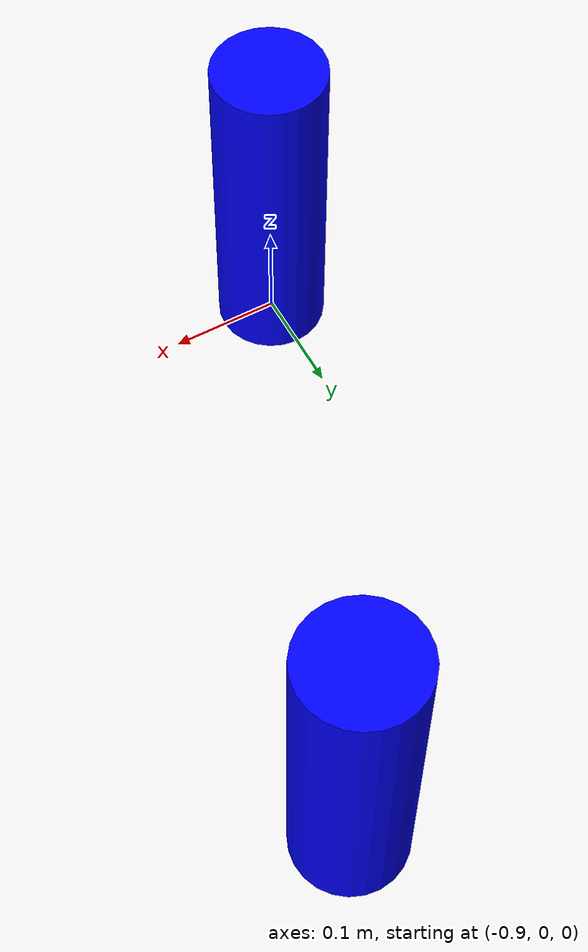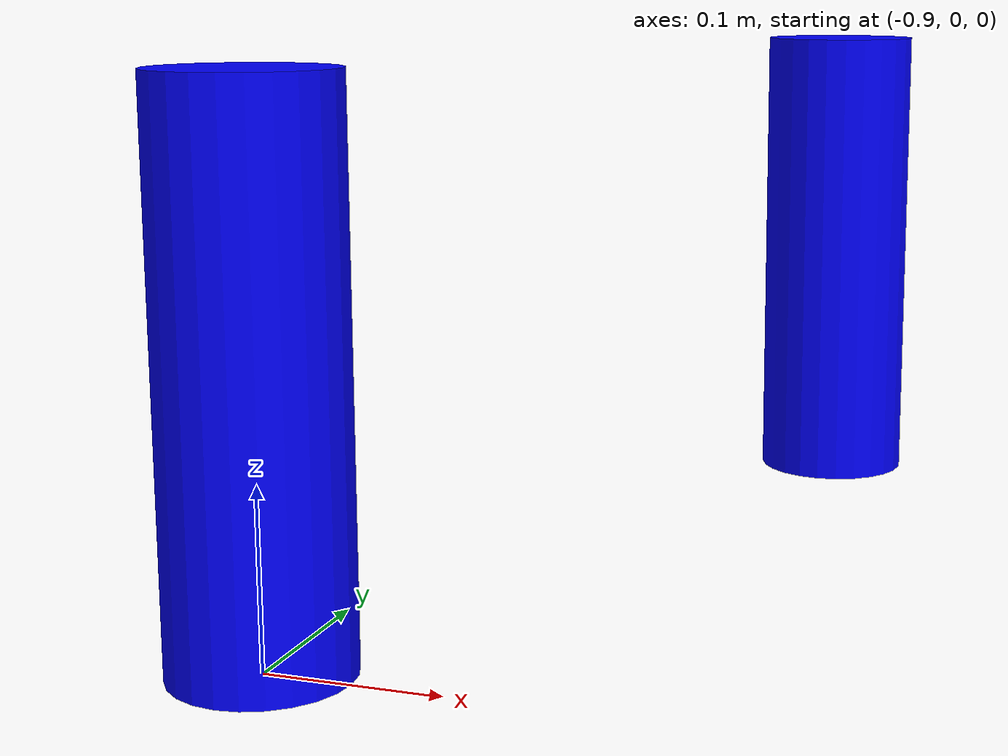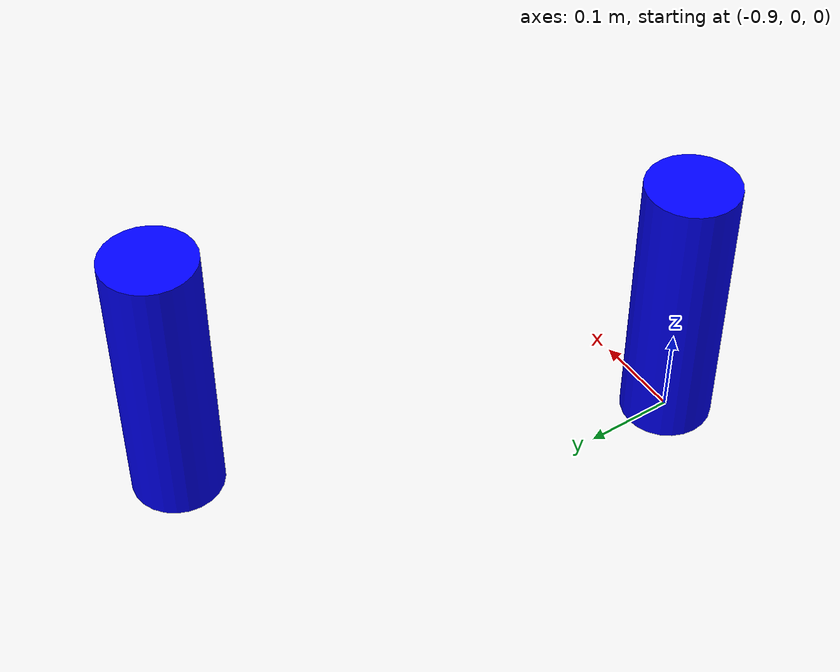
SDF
<?xml version='1.0'?>
<sdf version='1.7'>
  <model name='bouteille'>

    <link name='bouteille2'>
      <pose>-0.9 0 0.155 0 -0 0</pose>
      <self_collide>0</self_collide>
      <inertial>
        <mass>1</mass>
        <inertia>
          <ixx>0.145833</ixx>
          <ixy>0</ixy>
          <ixz>0</ixz>
          <iyy>0.145833</iyy>
          <iyz>0</iyz>
          <izz>0.125</izz>
        </inertia>
        <pose>0 0 0 0 -0 0</pose>
      </inertial>
      <self_collide>0</self_collide>
      <enable_wind>0</enable_wind>
      <kinematic>0</kinematic>
      <pose>0 0 0 0 -0 0</pose>
      <gravity>1</gravity>
      <visual name='visual'>
        <geometry>
          <cylinder>
            <radius>0.05</radius>
            <length>0.31</length>
          </cylinder>
        </geometry>
        <material>
          <script>
            <name>Gazebo/Grey</name>
            <uri>file://media/materials/scripts/gazebo.material</uri>
          </script>
          <shader type='pixel'>
            <normal_map>__default__</normal_map>
          </shader>
          <ambient>0 0 1 1</ambient>
          <diffuse>0 0 1 1</diffuse>
          <specular>0 0 0.9 1</specular>
          <emissive>0 0 0 1</emissive>
        </material>
        <pose>0 0 0 0 -0 0</pose>
        <transparency>0</transparency>
        <cast_shadows>1</cast_shadows>
      </visual>
      <collision name='collision'>
        <laser_retro>0</laser_retro>
        <max_contacts>10</max_contacts>
        <pose>0 0 0 0 -0 0</pose>
        <geometry>
          <cylinder>
            <radius>0.05</radius>
            <length>0.31</length>
          </cylinder>
        </geometry>
        <surface>
          <friction>
            <ode>
              <mu>1</mu>
              <mu2>1</mu2>
              <fdir1>0 0 0</fdir1>
              <slip1>0</slip1>
              <slip2>0</slip2>
            </ode>
            <torsional>
              <coefficient>1</coefficient>
              <patch_radius>0</patch_radius>
              <surface_radius>0</surface_radius>
              <use_patch_radius>1</use_patch_radius>
              <ode>
                <slip>0</slip>
              </ode>
            </torsional>
          </friction>
          <bounce>
            <restitution_coefficient>0</restitution_coefficient>
            <threshold>1e+06</threshold>
          </bounce>
          <contact>
            <collide_without_contact>0</collide_without_contact>
            <collide_without_contact_bitmask>1</collide_without_contact_bitmask>
            <collide_bitmask>1</collide_bitmask>
            <ode>
              <soft_cfm>0</soft_cfm>
              <soft_erp>0.2</soft_erp>
              <kp>1e+13</kp>
              <kd>1</kd>
              <max_vel>0.01</max_vel>
              <min_depth>0</min_depth>
            </ode>
            <bullet>
              <split_impulse>1</split_impulse>
              <split_impulse_penetration_threshold>-0.01</split_impulse_penetration_threshold>
              <soft_cfm>0</soft_cfm>
              <soft_erp>0.2</soft_erp>
              <kp>1e+13</kp>
              <kd>1</kd>
            </bullet>
          </contact>
        </surface>
      </collision>
    </link>

        <link name='bouteille3'>
      <pose>-0.7 0.5 0.155 0 -0 0</pose>
      <self_collide>0</self_collide>
      <inertial>
        <mass>1</mass>
        <inertia>
          <ixx>0.145833</ixx>
          <ixy>0</ixy>
          <ixz>0</ixz>
          <iyy>0.145833</iyy>
          <iyz>0</iyz>
          <izz>0.125</izz>
        </inertia>
        <pose>0 0 0 0 -0 0</pose>
      </inertial>
      <self_collide>0</self_collide>
      <enable_wind>0</enable_wind>
      <kinematic>0</kinematic>
      <pose>0 0 0 0 -0 0</pose>
      <gravity>1</gravity>
      <visual name='visual'>
        <geometry>
          <cylinder>
            <radius>0.05</radius>
            <length>0.31</length>
          </cylinder>
        </geometry>
        <material>
          <script>
            <name>Gazebo/Grey</name>
            <uri>file://media/materials/scripts/gazebo.material</uri>
          </script>
          <shader type='pixel'>
            <normal_map>__default__</normal_map>
          </shader>
          <ambient>0 0 1 1</ambient>
          <diffuse>0 0 1 1</diffuse>
          <specular>0 0 0.9 1</specular>
          <emissive>0 0 0 1</emissive>
        </material>
        <pose>0 0 0 0 -0 0</pose>
        <transparency>0</transparency>
        <cast_shadows>1</cast_shadows>
      </visual>
      <collision name='collision'>
        <laser_retro>0</laser_retro>
        <max_contacts>10</max_contacts>
        <pose>0 0 0 0 -0 0</pose>
        <geometry>
          <cylinder>
            <radius>0.05</radius>
            <length>0.31</length>
          </cylinder>
        </geometry>
        <surface>
          <friction>
            <ode>
              <mu>1</mu>
              <mu2>1</mu2>
              <fdir1>0 0 0</fdir1>
              <slip1>0</slip1>
              <slip2>0</slip2>
            </ode>
            <torsional>
              <coefficient>1</coefficient>
              <patch_radius>0</patch_radius>
              <surface_radius>0</surface_radius>
              <use_patch_radius>1</use_patch_radius>
              <ode>
                <slip>0</slip>
              </ode>
            </torsional>
          </friction>
          <bounce>
            <restitution_coefficient>0</restitution_coefficient>
            <threshold>1e+06</threshold>
          </bounce>
          <contact>
            <collide_without_contact>0</collide_without_contact>
            <collide_without_contact_bitmask>1</collide_without_contact_bitmask>
            <collide_bitmask>1</collide_bitmask>
            <ode>
              <soft_cfm>0</soft_cfm>
              <soft_erp>0.2</soft_erp>
              <kp>1e+13</kp>
              <kd>1</kd>
              <max_vel>0.01</max_vel>
              <min_depth>0</min_depth>
            </ode>
            <bullet>
              <split_impulse>1</split_impulse>
              <split_impulse_penetration_threshold>-0.01</split_impulse_penetration_threshold>
              <soft_cfm>0</soft_cfm>
              <soft_erp>0.2</soft_erp>
              <kp>1e+13</kp>
              <kd>1</kd>
            </bullet>
          </contact>
        </surface>
      </collision>
    </link>

    <static>1</static>
    <allow_auto_disable>1</allow_auto_disable>
  </model>
</sdf>
